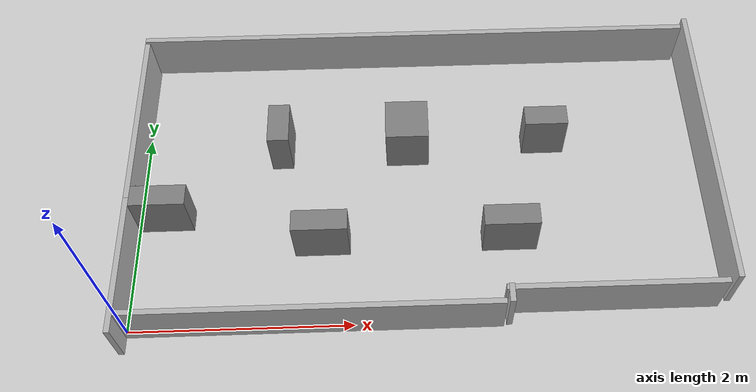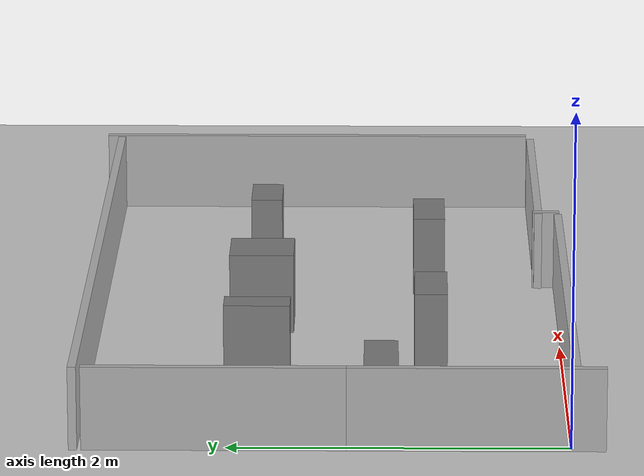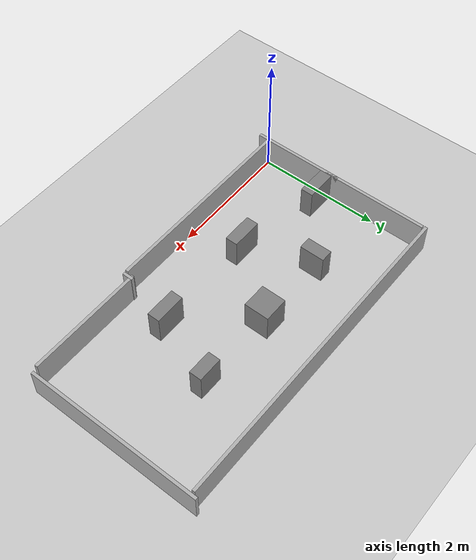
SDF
<?xml version="1.0" ?>
<sdf version="1.6">
<world name="default">

  <!-- Load ground plane -->
  <include>
    <uri>model://ground_plane</uri>
  </include>

  <!-- Load sun -->
  <include>
    <uri>model://sun</uri>
  </include>

  <!-- ROOM WALLS -->

  <!-- Bottom Wall -->
  <model name="wall_bottom">
    <static>true</static>
    <link name="wall_bottom_link">
      <collision name="collision">
        <geometry>
          <box><size>3.3 0.05 0.5</size></box> <!-- wall width, depth, height -->
        </geometry>
      </collision>
      <visual name="visual">
        <geometry>
          <box><size>3.3 0.05 0.5</size></box>
        </geometry>
        <material><ambient>0.7 0.7 0.7 1</ambient></material>
      </visual>
    </link>
    <pose>1.65 -0.025 0.25 0 0 0</pose> <!-- x y z roll pitch yaw -->
  </model>
  <model name="wall_bottom_right_most">
    <static>true</static>
    <link name="wall_bottom_link_right">
      <collision name="collision">
        <geometry>
          <box><size>1.91 0.05 0.5</size></box> <!-- wall width, depth, height -->
        </geometry>
      </collision>
      <visual name="visual">
        <geometry>
          <box><size>1.91 0.05 0.5</size></box>
        </geometry>
        <material><ambient>0.7 0.7 0.7 1</ambient></material>
      </visual>
    </link>
    <pose>4.26 0.10 0.25 0 0 0</pose> <!-- x y z roll pitch yaw -->
  </model>
  <model name="wall_bottom_vertical">
    <static>true</static>
    <link name="wall_bottom_link_vertical">
      <collision name="collision">
        <geometry>
          <box><size>0.05 0.17 0.5</size></box> <!-- wall width, depth, height -->
        </geometry>
      </collision>
      <visual name="visual">
        <geometry>
          <box><size>0.05 0.17 0.5</size></box>
        </geometry>
        <material><ambient>0.7 0.7 0.7 1</ambient></material>
      </visual>
    </link>
    <pose>3.35 0.05 0.25 0 0 0</pose> <!-- x y z roll pitch yaw -->
  </model>

  <!-- Top Wall -->
  <model name="wall_top">
    <static>true</static>
    <link name="wall_top_link">
      <collision name="collision">
        <geometry>
          <box><size>5.31 0.05 0.5</size></box>
        </geometry>
      </collision>
      <visual name="visual">
        <geometry>
          <box><size>5.31 0.05 0.5</size></box>
        </geometry>
        <material><ambient>0.7 0.7 0.7 1</ambient></material>
      </visual>
    </link>
    <pose>2.605 2.88 0.25 0 0 0</pose>
  </model>

  <!-- Left Wall -->
  <model name="wall_left">
    <static>true</static>
    <link name="wall_left_link">
      <collision name="collision">
        <geometry>
          <box><size>0.05 1.5 0.5</size></box>
        </geometry>
      </collision>
      <visual name="visual">
        <geometry>
          <box><size>0.05 1.5 0.5</size></box>
        </geometry>
        <material><ambient>0.7 0.7 0.7 1</ambient></material>
      </visual>
    </link>
    <pose>-0.025 0.55 0.25 0 0 0</pose>
  </model>
  <model name="wall_left_upperpart">
    <static>true</static>
    <link name="wall_left_link_upper">
      <collision name="collision">
        <geometry>
          <box><size>0.05 1.75 0.5</size></box>
        </geometry>
      </collision>
      <visual name="visual">
        <geometry>
          <box><size>0.05 1.75 0.5</size></box>
        </geometry>
        <material><ambient>0.7 0.7 0.7 1</ambient></material>
      </visual>
    </link>
    <pose>-0.025 1.9575 0.25 0 0 0</pose>
  </model>

  <!-- Right Wall -->
  <model name="wall_right">
    <static>true</static>
    <link name="wall_right_link">
      <collision name="collision">
        <geometry>
          <box><size>0.05 2.85 0.5</size></box>
        </geometry>
      </collision>
      <visual name="visual">
        <geometry>
          <box><size>0.05 2.85 0.5</size></box>
        </geometry>
        <material><ambient>0.7 0.7 0.7 1</ambient></material>
      </visual>
    </link>
    <pose>5.31 1.55 0.25 0 0 0</pose>
  </model>

  <!-- INTERNAL OBSTACLES -->
  <!-- First block (left one) -->
  <model name="obstacle1">
    <static>true</static>
    <link name="obstacle1_link">
      <collision name="collision">
        <geometry>
          <box><size>0.2 0.4 0.5</size></box>
        </geometry>
      </collision>
      <visual name="visual">
        <geometry>
          <box><size>0.2 0.4 0.5</size></box>
        </geometry>
        <material><ambient>0.5 0.5 0.5 1</ambient></material>
      </visual>
    </link>
    <pose>1.3 1.85 0.25 0 0 0</pose>
  </model>

  <!-- Second block (right one) -->
  <model name="obstacle2">
    <static>true</static>
    <link name="obstacle2_link">
      <collision name="collision">
        <geometry>
          <box><size>0.4 0.4 0.5</size></box>
        </geometry>
      </collision>
      <visual name="visual">
        <geometry>
          <box><size>0.4 0.4 0.5</size></box>
        </geometry>
        <material><ambient>0.5 0.5 0.5 1</ambient></material>
      </visual>
    </link>
    <pose>2.5 1.85 0.25 0 0 0</pose>
  </model>

  <!-- Second block (right one) -->
  <model name="obstacle_wall">
    <static>true</static>
    <link name="obstacle2_link">
      <collision name="collision">
        <geometry>
          <box><size>0.5 0.2 0.5</size></box>
        </geometry>
      </collision>
      <visual name="visual">
        <geometry>
          <box><size>0.5 0.2 0.5</size></box>
        </geometry>
        <material><ambient>0.5 0.5 0.5 1</ambient></material>
      </visual>
    </link>
    <pose>0.25 1.1 0.25 0 0 0</pose>
  </model>

  <!-- Second block (right one) -->
  <model name="obstacle_wp1">
    <static>true</static>
    <link name="obstacle_wp1">
      <collision name="collision">
        <geometry>
          <box><size>0.5 0.2 0.5</size></box>
        </geometry>
      </collision>
      <visual name="visual">
        <geometry>
          <box><size>0.5 0.2 0.5</size></box>
        </geometry>
        <material><ambient>0.5 0.5 0.5 1</ambient></material>
      </visual>
    </link>
    <pose>1.7 0.8 0.25 0 0 0</pose>
  </model>

  <!-- Second block (right one) -->
  <model name="obstacle_wp2">
    <static>true</static>
    <link name="obstacle2_wp2">
      <collision name="collision">
        <geometry>
          <box><size>0.5 0.2 0.5</size></box>
        </geometry>
      </collision>
      <visual name="visual">
        <geometry>
          <box><size>0.5 0.2 0.5</size></box>
        </geometry>
        <material><ambient>0.5 0.5 0.5 1</ambient></material>
      </visual>
    </link>
    <pose>3.41 0.8 0.25 0 0 0</pose>
  </model>

  <!-- Second block (right one) -->
  <model name="obstacle_wp6">
    <static>true</static>
    <link name="obstacle2_wp6">
      <collision name="collision">
        <geometry>
          <box><size>0.4 0.2 0.5</size></box>
        </geometry>
      </collision>
      <visual name="visual">
        <geometry>
          <box><size>0.4 0.2 0.5</size></box>
        </geometry>
        <material><ambient>0.5 0.5 0.5 1</ambient></material>
      </visual>
    </link>
    <pose>3.81 1.85 0.25 0 0 0</pose>
  </model>

</world>
</sdf>
